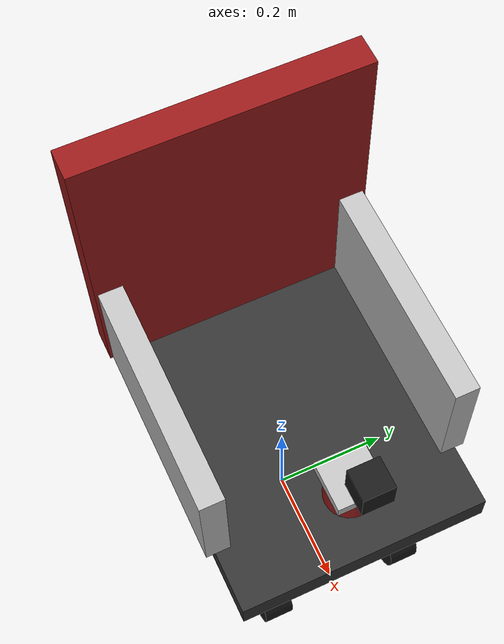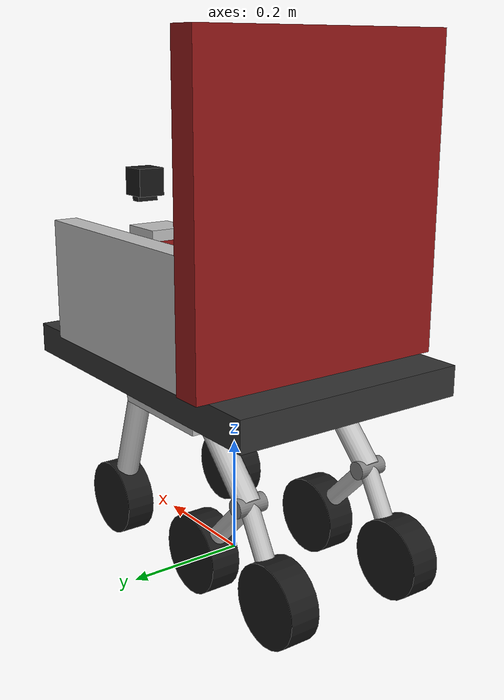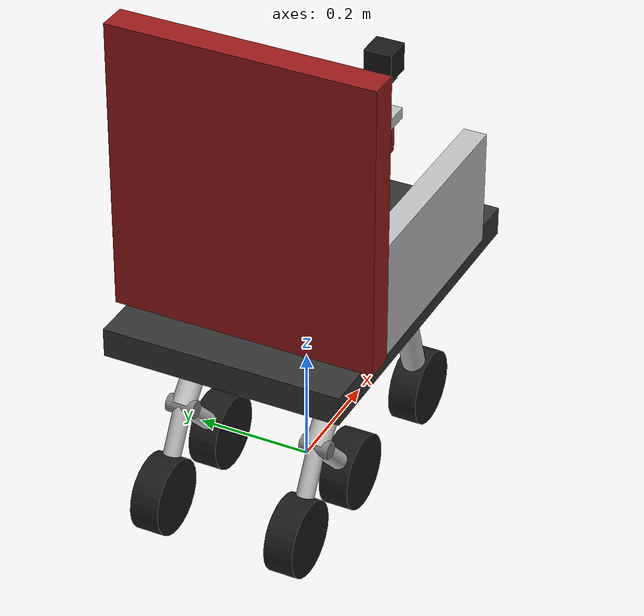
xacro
<?xml version="1.0"?>
<robot xmlns:xacro="http://ros.org/wiki/xacro" name="medical_wheelchair">

  <!-- Materials -->
  <material name="silver"><color rgba="0.75 0.75 0.75 1"/></material>
  <material name="dark_grey"><color rgba="0.2 0.2 0.2 1"/></material>
  <material name="fabric_red"><color rgba="0.6 0.1 0.1 1"/></material>
  <material name="black"><color rgba="0.1 0.1 0.1 1"/></material>
  <material name="grey"><color rgba="0.5 0.5 0.5 1"/></material>

  <!-- Inertia Macros -->
  <xacro:macro name="box_inertia" params="m w h d">
    <inertial>
      <origin xyz="0 0 0" rpy="0 0 0"/>
      <mass value="${m}"/>
      <inertia ixx="${(m/12)*(h*h + d*d)}" ixy="0" ixz="0" iyy="${(m/12)*(w*w + d*d)}" iyz="0" izz="${(m/12)*(w*w + h*h)}"/>
    </inertial>
  </xacro:macro>

  <xacro:macro name="cylinder_inertia" params="m r h">
    <inertial>
      <origin xyz="0 0 0" rpy="0 0 0"/>
      <mass value="${m}"/>
      <inertia ixx="${(m/12)*(3*r*r + h*h)}" ixy="0" ixz="0" iyy="${(m/12)*(3*r*r + h*h)}" iyz="0" izz="${(m/2)*r*r}"/>
    </inertial>
  </xacro:macro>

  <xacro:macro name="tubular_link" params="name length radius m material">
    <link name="${name}">
      <xacro:cylinder_inertia m="${m}" r="${radius}" h="${length}"/>
      <visual>
        <origin xyz="${length/2} 0 0" rpy="0 1.5708 0"/>
        <geometry><cylinder radius="${radius}" length="${length}"/></geometry>
        <material name="${material}"/>
      </visual>
      <collision>
        <origin xyz="${length/2} 0 0" rpy="0 1.5708 0"/>
        <geometry><cylinder radius="${radius}" length="${length}"/></geometry>
      </collision>
    </link>
  </xacro:macro>

  <link name="base_footprint"/>

  <joint name="base_footprint_joint" type="fixed">
    <parent link="base_footprint"/>
    <child link="base_link"/>
    <origin xyz="0 0 0.35" rpy="0 0 0"/>
  </joint>

  <!-- Base Link (Seat) - Reduced mass to lower COM -->
  <link name="base_link">
    <xacro:box_inertia m="1.0" w="0.41" h="0.60" d="0.05"/>
    <visual>
      <geometry><box size="0.60 0.41 0.05"/></geometry>
      <material name="dark_grey"/>
    </visual>
    <collision>
      <geometry><box size="0.60 0.41 0.05"/></geometry>
    </collision>
  </link>

  <!-- Backrest -->
  <link name="backrest">
    <xacro:box_inertia m="0.5" w="0.05" h="0.45" d="0.5"/>
    <visual>
      <geometry><box size="0.05 0.45 0.5"/></geometry>
      <material name="fabric_red"/>
    </visual>
    <collision>
      <geometry><box size="0.05 0.45 0.5"/></geometry>
    </collision>
  </link>
  <joint name="backrest_joint" type="fixed">
    <parent link="base_link"/>
    <child link="backrest"/>
    <origin xyz="-0.2 0 0.275" rpy="0 0 0"/>
  </joint>

  <!-- Armrests -->
  <link name="left_armrest">
    <xacro:box_inertia m="0.1" w="0.4" h="0.04" d="0.2"/>
    <visual><geometry><box size="0.4 0.04 0.2"/></geometry><material name="silver"/></visual>
    <collision><geometry><box size="0.4 0.04 0.2"/></geometry></collision>
  </link>
  <joint name="left_armrest_joint" type="fixed">
    <parent link="base_link"/>
    <child link="left_armrest"/>
    <origin xyz="0 0.2 0.125" rpy="0 0 0"/>
  </joint>

  <link name="right_armrest">
    <xacro:box_inertia m="0.1" w="0.4" h="0.04" d="0.2"/>
    <visual><geometry><box size="0.4 0.04 0.2"/></geometry><material name="silver"/></visual>
    <collision><geometry><box size="0.4 0.04 0.2"/></geometry></collision>
  </link>
  <joint name="right_armrest_joint" type="fixed">
    <parent link="base_link"/>
    <child link="right_armrest"/>
    <origin xyz="0 -0.2 0.125" rpy="0 0 0"/>
  </joint>

  <!-- Main Chassis Hub - Increased mass for lower COM -->
  <link name="chassis_hub">
    <xacro:box_inertia m="8.0" w="0.2" h="0.3" d="0.05"/>
    <visual>
      <origin xyz="0 0 0" rpy="0 0 0"/>
      <geometry><box size="0.2 0.3 0.05"/></geometry>
      <material name="silver"/>
    </visual>
    <collision>
      <origin xyz="0 0 0" rpy="0 0 0"/>
      <geometry><box size="0.2 0.3 0.05"/></geometry>
    </collision>
  </link>
  <joint name="chassis_hub_joint" type="fixed">
    <parent link="base_link"/>
    <child link="chassis_hub"/>
    <origin xyz="0 0 -0.05" rpy="0 0 0"/>
  </joint>

  <!-- Camera Link & Joint: Mounted at the front edge of the seat tilted down 20 deg (0.35 rad) -->
  <link name="camera_link">
    <visual>
      <origin xyz="0 0 0" rpy="0 0 0"/>
      <geometry><box size="0.05 0.05 0.05"/></geometry>
      <material name="black"/>
    </visual>
    <inertial>
      <mass value="0.1"/>
      <inertia ixx="0.0001" ixy="0" ixz="0" iyy="0.0001" iyz="0" izz="0.0001"/>
    </inertial>
  </link>

  <joint name="camera_joint" type="fixed">
    <parent link="base_link"/>
    <child link="camera_link"/>
    <origin xyz="0.28 0 0.265" rpy="0 0 0"/>
  </joint>

  <!-- IMU Sensor -->
  <link name="imu_link">
    <inertial>
      <mass value="0.01"/>
      <inertia ixx="1e-5" ixy="0" ixz="0" iyy="1e-5" iyz="0" izz="1e-5"/>
    </inertial>
  </link>
  <joint name="imu_joint" type="fixed">
    <parent link="base_link"/>
    <child link="imu_link"/>
    <origin xyz="0.20 0 0" rpy="0 0 0"/>
  </joint>

  <gazebo reference="imu_link">
    <sensor name="imu_sensor" type="imu">
      <always_on>1</always_on>
      <update_rate>50</update_rate>
      <visualize>true</visualize>
      <topic>/imu</topic>
      <ignition_frame_id>wheelchair/imu_link</ignition_frame_id>
    </sensor>
  </gazebo>

  <!-- Optical Link for ROS -->
  <link name="camera_link_optical"/>
  <joint name="camera_optical_joint" type="fixed">
    <parent link="camera_link"/>
    <child link="camera_link_optical"/>
    <origin xyz="0 0 0" rpy="-1.5708 0 -1.5708"/>
  </joint>

  <!-- LiDAR Sensor & Mount: flush under silver chassis_hub (not buried inside the box—scan origin sits below deck). -->
  <link name="lidar_mount">
    <visual>
      <origin xyz="0 0 -0.01" rpy="0 0 0"/>
      <geometry><box size="0.08 0.08 0.02"/></geometry>
      <material name="silver"/>
    </visual>
  </link>

  <joint name="lidar_mount_joint" type="fixed">
    <parent link="base_link"/>
    <child link="lidar_mount"/>
    <origin xyz="0.23 0 0.19" rpy="0 0 0"/>
  </joint>

  <link name="lidar_link">
    <inertial>
      <mass value="0.1"/>
      <inertia ixx="0.0001" ixy="0" ixz="0" iyy="0.0001" iyz="0" izz="0.0001"/>
    </inertial>
    <visual>
      <origin xyz="0 0 0" rpy="0 0 0"/>
      <geometry><cylinder radius="0.04" length="0.05"/></geometry>
      <material name="fabric_red"/>
    </visual>
    <collision>
      <origin xyz="0 0 0" rpy="0 0 0"/>
      <geometry><cylinder radius="0.04" length="0.05"/></geometry>
    </collision>
  </link>

  <joint name="lidar_joint" type="fixed">
    <parent link="lidar_mount"/>
    <child link="lidar_link"/>
    <!-- Cylinder center below the silver deck so horizontal rays clear hub collision -->
    <!-- Set to upright (roll=0) because 2D SLAM ignores roll/pitch and would see mirrored scans -->
    <origin xyz="0 0 -0.04" rpy="0 0 0"/>
  </joint>

  <gazebo reference="lidar_link">
    <sensor name="gpu_lidar" type="gpu_lidar">
      <pose>0 0 0 0 0 0</pose>
      <topic>/scan</topic>
      <ignition_frame_id>wheelchair/lidar_link</ignition_frame_id>
      <update_rate>10</update_rate>
      <ray>
        <scan>
          <horizontal>
            <samples>360</samples>
            <resolution>1</resolution>
            <min_angle>-3.14159</min_angle>
            <max_angle>3.14159</max_angle>
          </horizontal>
        </scan>
        <range>
          <min>0.45</min>
          <max>8.0</max>
          <resolution>0.01</resolution>
        </range>
      </ray>
      <visualize>true</visualize>
    </sensor>
  </gazebo>

  <!-- Ultrasonic Sensor -->
  <link name="ultrasonic_link">
    <visual>
      <origin xyz="0 0 0" rpy="0 0 0"/>
      <geometry><box size="0.02 0.04 0.02"/></geometry>
      <material name="black"/>
    </visual>
  </link>

  <joint name="ultrasonic_joint" type="fixed">
    <parent link="base_link"/>
    <child link="ultrasonic_link"/>
    <origin xyz="0.28 0 0.24" rpy="0 0 0"/>
  </joint>

  <gazebo reference="camera_link">
    <sensor name="camera" type="rgbd_camera">
      <topic>camera</topic>
      <camera>
        <horizontal_fov>1.047</horizontal_fov>
        <image>
          <width>640</width>
          <height>480</height>
        </image>
        <clip>
          <near>0.1</near>
          <far>10</far>
        </clip>
      </camera>
      <always_on>1</always_on>
      <update_rate>15</update_rate>
      <visualize>true</visualize>
      <ignition_frame_id>wheelchair/camera_link_optical</ignition_frame_id>
    </sensor>
  </gazebo>

  <!-- Navigation Macros for Sides -->
  <xacro:macro name="chassis_side" params="side reflect">
    <!-- Rear Sloped Arm -->
    <xacro:tubular_link name="rear_arm_${side}" length="0.2485" radius="0.02" m="0.15" material="silver"/>
    <joint name="rear_arm_${side}_joint" type="fixed">
      <parent link="chassis_hub"/>
      <child link="rear_arm_${side}"/>
      <!-- Physically moved to the FRONT of the chair, pointing FORWARD -->
      <origin xyz="0.1 ${reflect * 0.12} 0" rpy="0 1.2396 0"/>
    </joint>

    <!-- Rear Wheel -->
    <link name="rear_${side}_wheel">
      <xacro:cylinder_inertia m="0.3" r="0.065" h="0.05"/>
      <visual>
        <origin xyz="0 0 0" rpy="1.5708 0 0"/>
        <geometry><cylinder radius="0.065" length="0.05"/></geometry>
        <material name="black"/>
      </visual>
      <collision>
        <origin xyz="0 0 0" rpy="1.5708 0 0"/>
        <geometry><cylinder radius="0.065" length="0.05"/></geometry>
      </collision>
      <gazebo reference="rear_${side}_wheel">
        <!-- Restored high friction to match old working values -->
        <mu1>1.5</mu1>
        <mu2>1.5</mu2>
        <self_collide>false</self_collide>
      </gazebo>
    </link>
    <!-- Rear Steering Mechanism -->
    <link name="rear_${side}_steering_link">
      <xacro:cylinder_inertia m="0.1" r="0.02" h="0.05"/>
      <visual>
        <geometry><cylinder radius="0.02" length="0.05"/></geometry>
        <material name="dark_grey"/>
      </visual>
      <gazebo reference="rear_${side}_steering_link">
        <self_collide>false</self_collide>
      </gazebo>
    </link>
    <joint name="rear_${side}_steering_joint" type="revolute">
      <parent link="rear_arm_${side}"/>
      <child link="rear_${side}_steering_link"/>
      <origin xyz="0.2485 0 0" rpy="0 -1.2396 0"/>
      <axis xyz="0 0 1"/>
      <limit lower="-0.785" upper="0.785" effort="10.0" velocity="2.30"/>
      <dynamics damping="1.0" friction="1.0"/>
    </joint>

    <joint name="rear_${side}_wheel_joint" type="continuous">
      <parent link="rear_${side}_steering_link"/>
      <child link="rear_${side}_wheel"/>
      <origin xyz="0 0 0" rpy="0 0 0"/>
      <axis xyz="0 1 0"/>
      <!-- Restored effort/velocity to match working old values -->
      <limit effort="40.0" velocity="10.0"/>
      <dynamics damping="1.0" friction="1.0"/>
    </joint>

    <!-- Front Sloped Arm -->
    <xacro:tubular_link name="front_arm_${side}" length="0.15" radius="0.02" m="0.15" material="silver"/>
    <joint name="front_arm_${side}_joint" type="fixed">
      <parent link="chassis_hub"/>
      <child link="front_arm_${side}"/>
      <!-- Physically moved to the REAR of the chair, pointing BACKWARD -->
      <origin xyz="-0.1 ${reflect * 0.12} 0" rpy="0 0.8 3.14159"/>
    </joint>

    <!-- Bogie Pivot -->
    <link name="bogie_pivot_${side}">
      <xacro:cylinder_inertia m="0.05" r="0.015" h="0.05"/>
      <visual>
        <origin xyz="0 0 0" rpy="1.5708 0 0"/>
        <geometry><cylinder radius="0.015" length="0.05"/></geometry>
        <material name="grey"/>
      </visual>
    </link>
    <joint name="bogie_pivot_${side}_joint" type="revolute">
      <parent link="front_arm_${side}"/>
      <child link="bogie_pivot_${side}"/>
      <origin xyz="0.15 0 0" rpy="0 0 0"/>
      <axis xyz="0 1 0"/>
      <!-- Tightened limits: reduce over-rotation that lifts middle wheel -->
      <limit effort="10" velocity="1" lower="-0.15" upper="0.15"/>
      <!-- High damping to resist lateral turning forces that flip the bogie -->
      <dynamics damping="5.0" friction="2.0"/>
    </joint>

    <!-- Inverted V Bogie branches -->
    <!-- Middle branch -->
    <xacro:tubular_link name="bogie_middle_arm_${side}" length="0.1774" radius="0.015" m="0.1" material="silver"/>
    <joint name="bogie_middle_arm_joint_${side}" type="fixed">
      <parent link="bogie_pivot_${side}"/>
      <child link="bogie_middle_arm_${side}"/>
      <origin xyz="0 0 0" rpy="0 1.5400 0"/>
    </joint>

    <!-- Front branch -->
    <xacro:tubular_link name="bogie_front_arm_${side}" length="0.1464" radius="0.015" m="0.1" material="silver"/>
    <joint name="bogie_front_arm_joint_${side}" type="fixed">
      <parent link="bogie_pivot_${side}"/>
      <child link="bogie_front_arm_${side}"/>
      <origin xyz="0 0 0" rpy="0 0.2543 0"/>
    </joint>

    <!-- Front Wheel -->
    <link name="front_${side}_wheel">
      <xacro:cylinder_inertia m="0.3" r="0.065" h="0.05"/>
      <visual>
        <origin xyz="0 0 0" rpy="1.5708 0 0"/>
        <geometry><cylinder radius="0.065" length="0.05"/></geometry>
        <material name="black"/>
      </visual>
      <collision>
        <origin xyz="0 0 0" rpy="1.5708 0 0"/>
        <geometry><cylinder radius="0.065" length="0.05"/></geometry>
      </collision>
      <gazebo reference="front_${side}_wheel">
        <!-- Restored high friction to match old working values -->
        <mu1>1.5</mu1>
        <mu2>1.5</mu2>
        <self_collide>false</self_collide>
      </gazebo>
    </link>
    <!-- Front Steering Mechanism -->
    <link name="front_${side}_steering_link">
      <xacro:cylinder_inertia m="0.1" r="0.02" h="0.05"/>
      <visual>
        <geometry><cylinder radius="0.02" length="0.05"/></geometry>
        <material name="dark_grey"/>
      </visual>
      <gazebo reference="front_${side}_steering_link">
        <self_collide>false</self_collide>
      </gazebo>
    </link>
    <joint name="front_${side}_steering_joint" type="revolute">
      <parent link="bogie_front_arm_${side}"/>
      <child link="front_${side}_steering_link"/>
      <origin xyz="0.1464 0 0" rpy="0 -1.0543 0"/>
      <axis xyz="0 0 1"/>
      <limit lower="-0.785" upper="0.785" effort="10.0" velocity="2.30"/>
      <dynamics damping="1.0" friction="1.0"/>
    </joint>

    <joint name="front_${side}_wheel_joint" type="continuous">
      <parent link="front_${side}_steering_link"/>
      <child link="front_${side}_wheel"/>
      <origin xyz="0 0 0" rpy="0 0 0"/>
      <axis xyz="0 -1 0"/>
      <!-- Restored effort/velocity to match working old values -->
      <limit effort="40.0" velocity="10.0"/>
      <dynamics damping="1.0" friction="1.0"/>
    </joint>

    <!-- Middle Wheel -->
    <link name="middle_${side}_wheel">
      <xacro:cylinder_inertia m="0.3" r="0.065" h="0.05"/>
      <visual>
        <origin xyz="0 0 0" rpy="1.5708 0 0"/>
        <geometry><cylinder radius="0.065" length="0.05"/></geometry>
        <material name="black"/>
      </visual>
      <collision>
        <origin xyz="0 0 0" rpy="1.5708 0 0"/>
        <geometry><cylinder radius="0.065" length="0.05"/></geometry>
      </collision>
      <gazebo reference="middle_${side}_wheel">
        <!-- Increased friction to resist lateral scrubbing during turns -->
        <mu1>1.0</mu1>
        <mu2>0.8</mu2>
        <self_collide>false</self_collide>
      </gazebo>
    </link>
    <joint name="middle_${side}_wheel_joint" type="continuous">
      <parent link="bogie_middle_arm_${side}"/>
      <child link="middle_${side}_wheel"/>
      <origin xyz="0.1774 0 0" rpy="0 -1.5400 0"/>
      <axis xyz="0 -1 0"/>
      <!-- Restored effort/velocity to match working old values -->
      <limit effort="40.0" velocity="10.0"/>
      <dynamics damping="1.0" friction="1.0"/>
    </joint>
  </xacro:macro>

  <xacro:chassis_side side="left" reflect="1"/>
  <xacro:chassis_side side="right" reflect="-1"/>

  <!-- Gazebo Plugins -->
  <gazebo>
    <!-- Steering Controllers (Position) - front_left, front_right, rear_left, rear_right -->
    <plugin filename="gz-sim-joint-position-controller-system" name="gz::sim::systems::JointPositionController">
      <joint_name>front_left_steering_joint</joint_name>
      <topic>/cmd_front_left_steer</topic>
      <p_gain>100</p_gain><d_gain>5.0</d_gain>
    </plugin>
    <plugin filename="gz-sim-joint-position-controller-system" name="gz::sim::systems::JointPositionController">
      <joint_name>front_right_steering_joint</joint_name>
      <topic>/cmd_front_right_steer</topic>
      <p_gain>100</p_gain><d_gain>5.0</d_gain>
    </plugin>
    <plugin filename="gz-sim-joint-position-controller-system" name="gz::sim::systems::JointPositionController">
      <joint_name>rear_left_steering_joint</joint_name>
      <topic>/cmd_rear_left_steer</topic>
      <p_gain>100</p_gain><d_gain>5.0</d_gain>
    </plugin>
    <plugin filename="gz-sim-joint-position-controller-system" name="gz::sim::systems::JointPositionController">
      <joint_name>rear_right_steering_joint</joint_name>
      <topic>/cmd_rear_right_steer</topic>
      <p_gain>500</p_gain><d_gain>5.0</d_gain>
    </plugin>

    <!-- Wheel Velocity Controllers -->
    <plugin filename="gz-sim-joint-controller-system" name="gz::sim::systems::JointController">
      <joint_name>front_left_wheel_joint</joint_name>
      <topic>/cmd_front_left_wheel</topic>
      <initial_velocity>0</initial_velocity>
    </plugin>
    <plugin filename="gz-sim-joint-controller-system" name="gz::sim::systems::JointController">
      <joint_name>front_right_wheel_joint</joint_name>
      <topic>/cmd_front_right_wheel</topic>
      <initial_velocity>0</initial_velocity>
    </plugin>
    <plugin filename="gz-sim-joint-controller-system" name="gz::sim::systems::JointController">
      <joint_name>middle_left_wheel_joint</joint_name>
      <topic>/cmd_middle_left_wheel</topic>
      <initial_velocity>0</initial_velocity>
    </plugin>
    <plugin filename="gz-sim-joint-controller-system" name="gz::sim::systems::JointController">
      <joint_name>middle_right_wheel_joint</joint_name>
      <topic>/cmd_middle_right_wheel</topic>
      <initial_velocity>0</initial_velocity>
    </plugin>
    <plugin filename="gz-sim-joint-controller-system" name="gz::sim::systems::JointController">
      <joint_name>rear_left_wheel_joint</joint_name>
      <topic>/cmd_rear_left_wheel</topic>
      <initial_velocity>0</initial_velocity>
    </plugin>
    <plugin filename="gz-sim-joint-controller-system" name="gz::sim::systems::JointController">
      <joint_name>rear_right_wheel_joint</joint_name>
      <topic>/cmd_rear_right_wheel</topic>
      <initial_velocity>0</initial_velocity>
    </plugin>

    <plugin
      filename="gz-sim-joint-state-publisher-system"
      name="gz::sim::systems::JointStatePublisher">
      <topic>/joint_states</topic>
      <joint_name>rear_left_wheel_joint</joint_name>
      <joint_name>rear_right_wheel_joint</joint_name>
      <joint_name>middle_left_wheel_joint</joint_name>
      <joint_name>middle_right_wheel_joint</joint_name>
      <joint_name>front_left_wheel_joint</joint_name>
      <joint_name>front_right_wheel_joint</joint_name>
      <joint_name>bogie_pivot_left_joint</joint_name>
      <joint_name>bogie_pivot_right_joint</joint_name>
      <joint_name>rear_left_steering_joint</joint_name>
      <joint_name>rear_right_steering_joint</joint_name>
      <joint_name>front_left_steering_joint</joint_name>
      <joint_name>front_right_steering_joint</joint_name>
    </plugin>
  </gazebo>

</robot>
